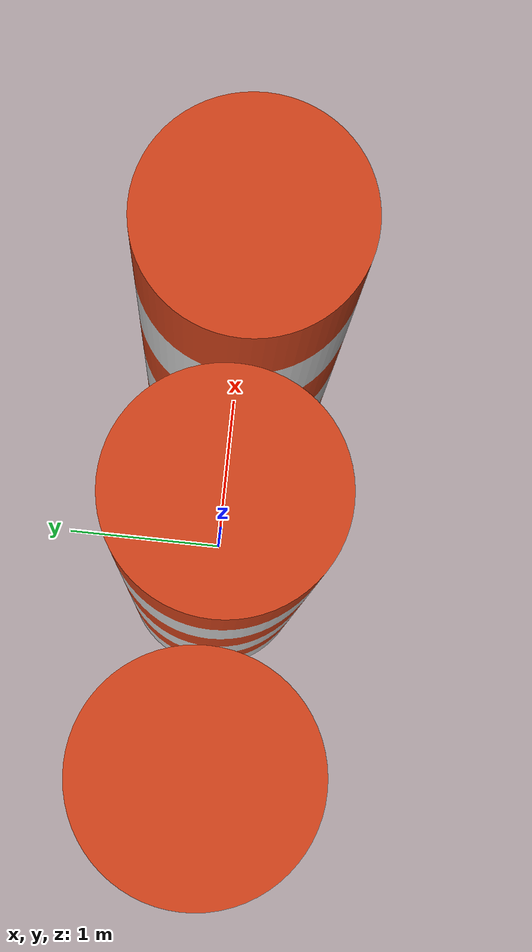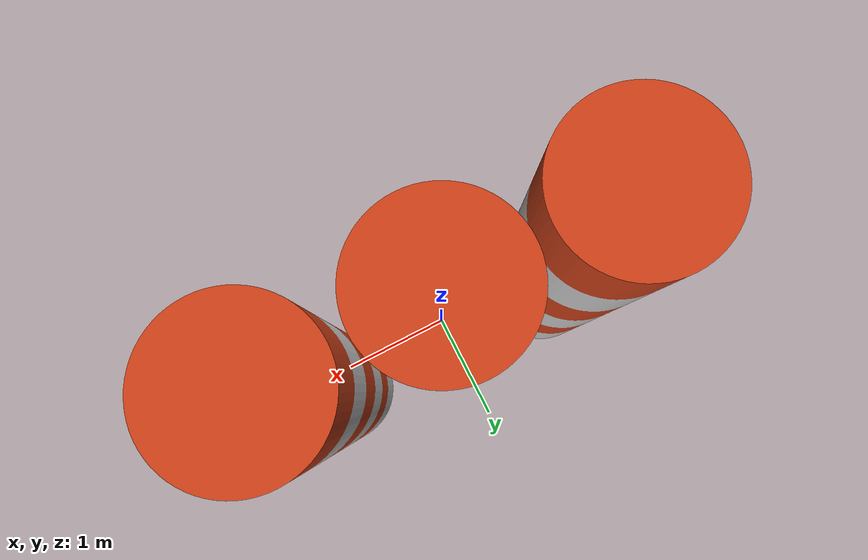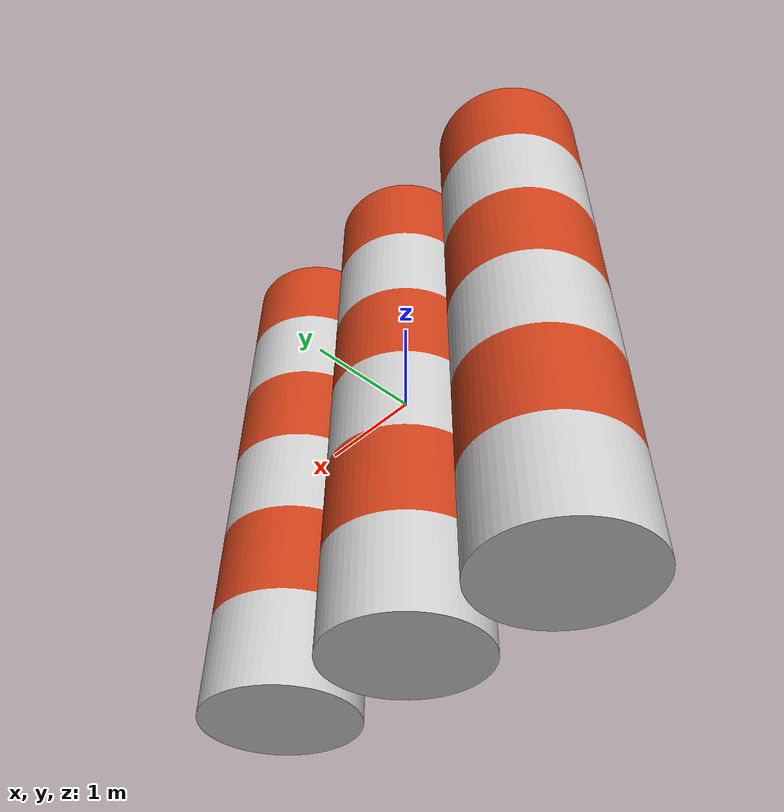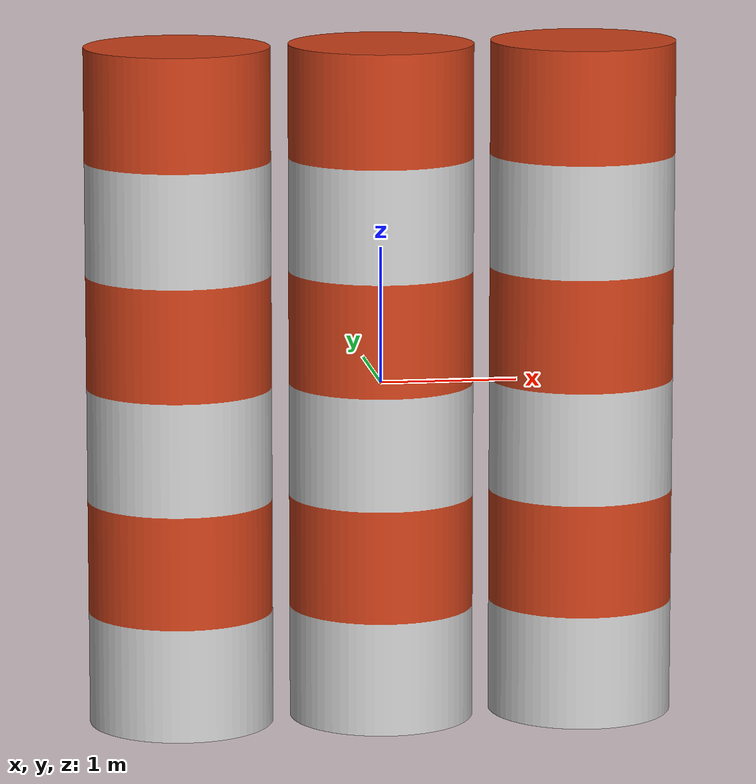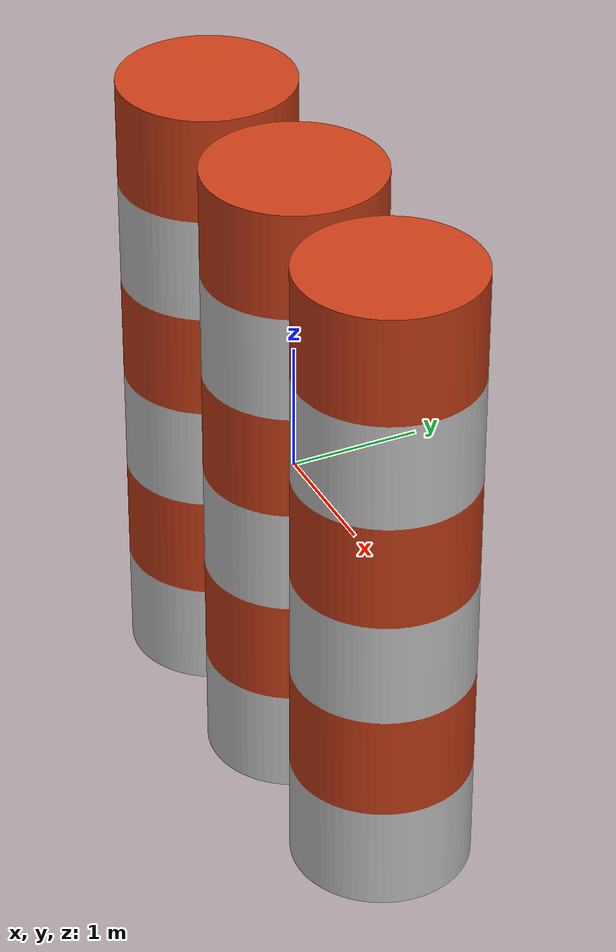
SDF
<?xml version='1.0'?>
<sdf version='1.4'>
  <model name='traffic_barrel_triple'>
    <static>true</static>
    <link name="barrel">
      <visual name="visual">
            <geometry>
                <mesh>
                    <uri>model://traffic_barrel_triple/materials/meshes/Traffic-Cones_Triple.dae</uri>
		    <scale>1.5 1.5 2.5</scale>
                </mesh>
            </geometry>
        </visual>
        <collision name="collision">
            <geometry>
                <mesh>
                    <uri>model://traffic_barrel_triple/materials/meshes/Traffic-Cones_Triple.dae</uri>
		    <scale>1.5 1.5 2.5</scale>
                </mesh>
            </geometry>
        </collision>
    </link>
  </model>
</sdf>
